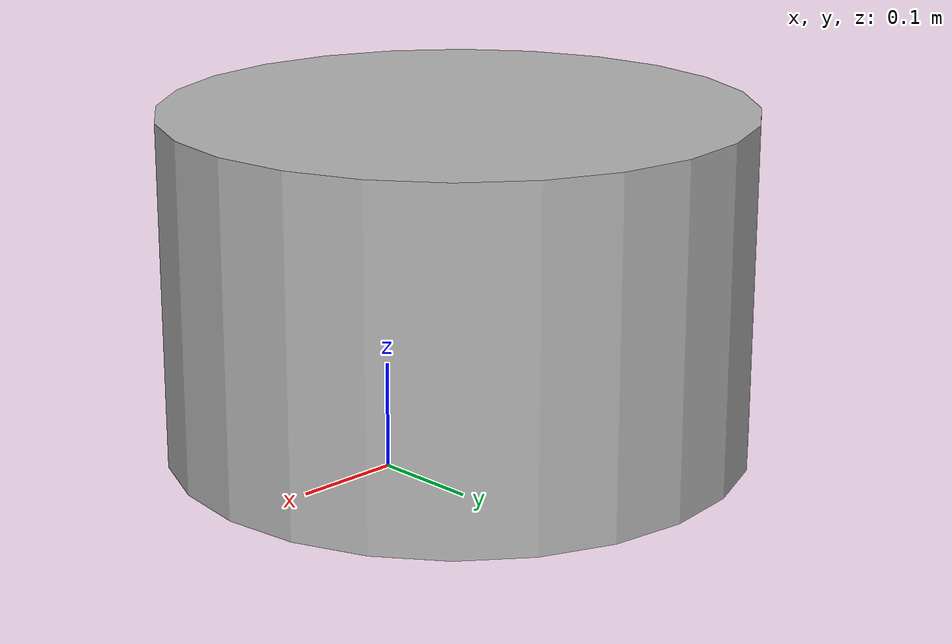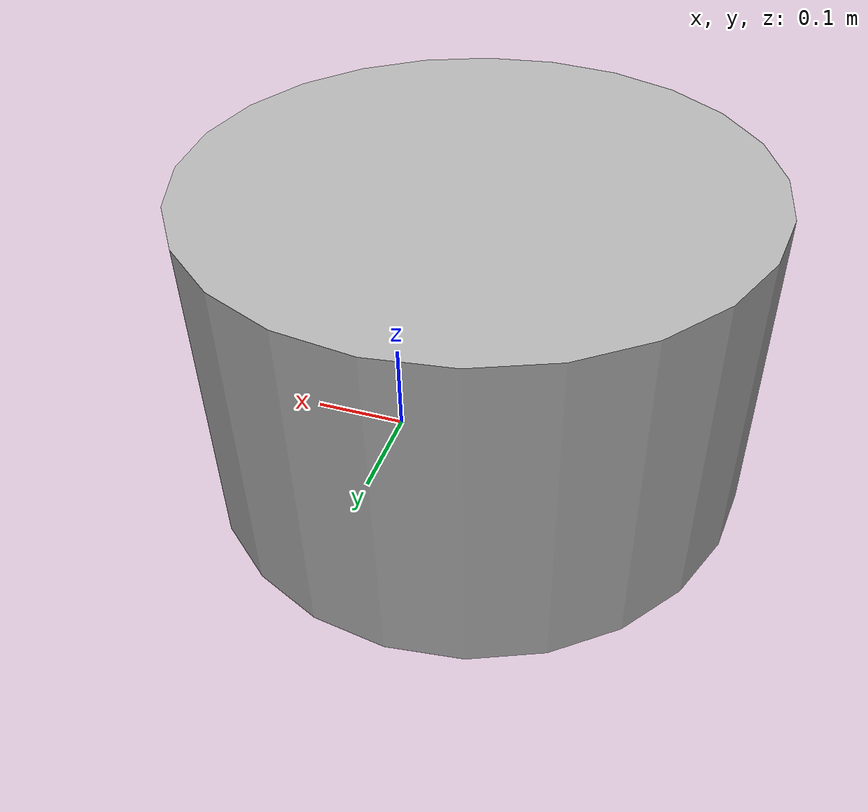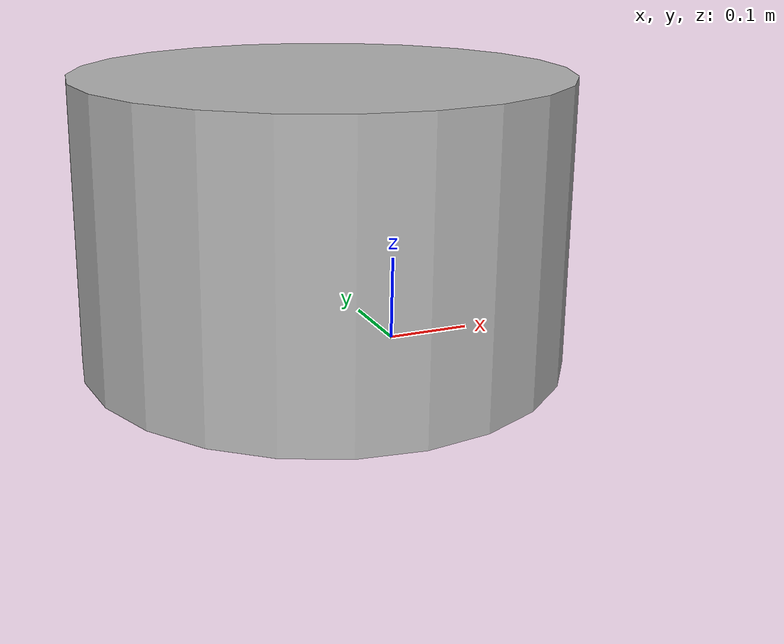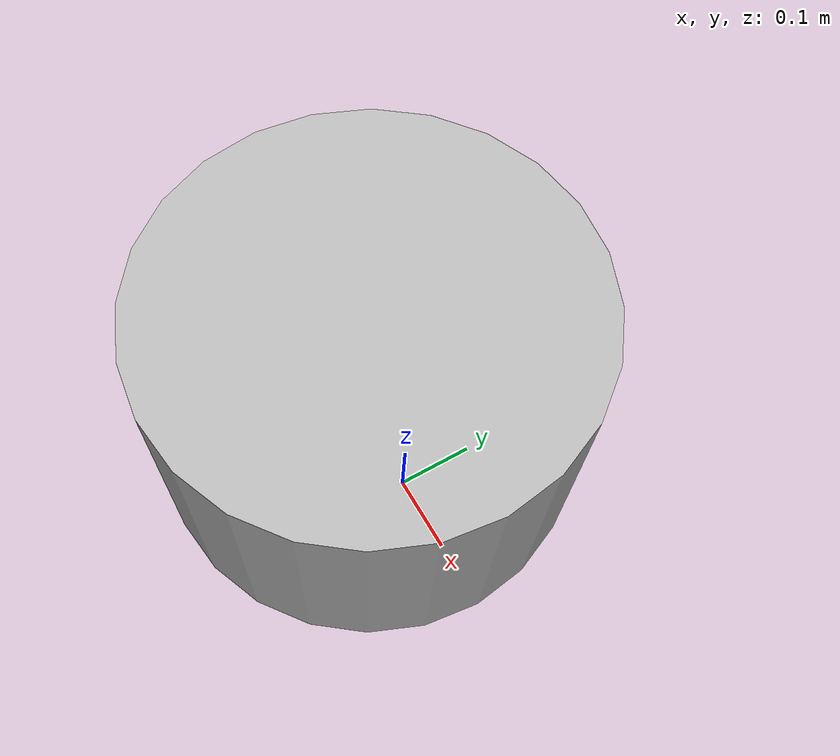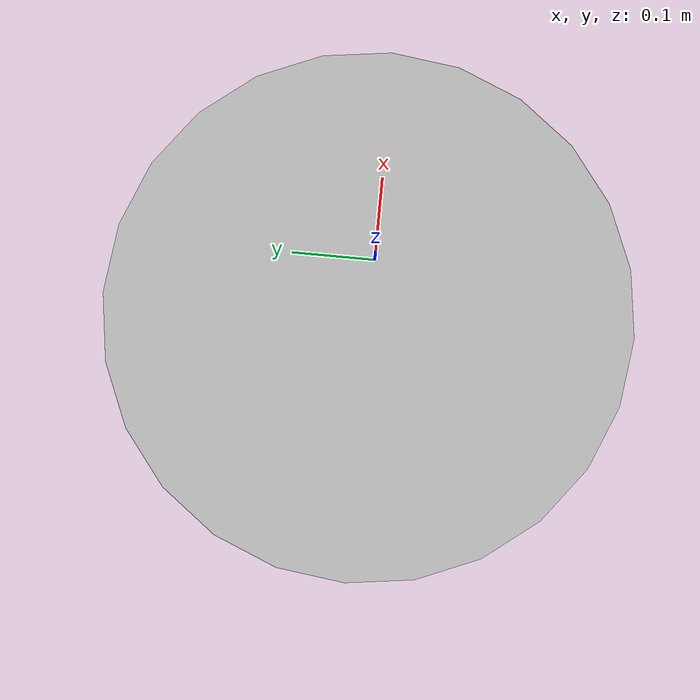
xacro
<?xml version="1.0"?>
<robot xmlns:xacro="http://www.ros.org/wiki/xacro" name="ylhb_robot">

  <!-- 1. 定义主要参考坐标系 (通常位于机器人底盘中心在地面的投影位置) -->
  <link name="base_footprint"/>

  <!-- 2. 小车主体框架：建立 base_link（实测偏心圆柱包络） -->
  <link name="base_link">
    <visual>
      <origin xyz="-0.09025 0 0.07625" rpy="0 0 0"/>
      <geometry>
        <cylinder radius="0.27675" length="0.3255"/>
      </geometry>
      <material name="gray">
        <color rgba="0.7 0.7 0.7 1"/>
      </material>
    </visual>
    <collision>
      <origin xyz="-0.09025 0 0.07625" rpy="0 0 0"/>
      <geometry>
        <cylinder radius="0.27675" length="0.3255"/>
      </geometry>
    </collision>
  </link>

  <!-- 将 base_link 与 base_footprint 链接，保持底盘坐标系在轮间中心。 -->
  <joint name="footprint_to_base_joint" type="fixed">
    <parent link="base_footprint"/>
    <child link="base_link"/>
    <origin xyz="0 0 0.0865" rpy="0 0 0"/>
  </joint>

  <!-- 3. 定义 IMU 的位置与物理属性 -->
  <link name="imu_link">
    <!-- 仅做在RVIZ中可视化时的示意（简单方块） -->
    <visual>
      <geometry>
        <box size="0.02 0.02 0.02"/>
      </geometry>
      <material name="blue">
        <color rgba="0 0 1 1"/>
      </material>
    </visual>
  </link>

  <!-- 4. 定义 激光雷达 的位置与物理属性 -->
  <link name="laser_link">
    <!-- RVIZ可视化的简单圆柱体示意 -->
    <visual>
      <geometry>
        <cylinder radius="0.035" length="0.03"/>
      </geometry>
      <material name="black">
        <color rgba="0.1 0.1 0.1 1"/>
      </material>
    </visual>
  </link>

  <link name="gps_link"/>

  <!-- ================= 连接关节 (Joints) ================= -->

  <!-- Base 到 IMU 的静态固定连接 -->
  <joint name="base_to_imu_joint" type="fixed">
    <parent link="base_footprint"/>
    <child link="imu_link"/>
    <!-- N300WP PRO: 轮间中心前方 109.5 mm、高 110 mm，X 轴朝车头。 -->
    <origin xyz="0.1095 0 0.110" rpy="0 0 0"/>
  </joint>

  <joint name="base_to_laser_joint" type="fixed">
    <parent link="base_link"/>
    <child link="laser_link"/>
    <!-- 雷达数据 X 轴对准小车前进方向，坐标系与 base_link 同向。 -->
    <origin xyz="-0.090 0 0.1805" rpy="0 0 0"/>
  </joint>

  <joint name="base_to_gps_joint" type="fixed">
    <parent link="base_footprint"/>
    <child link="gps_link"/>
    <!-- Provisional antenna origin. Replace XYZ with the measured antenna offset. -->
    <origin xyz="0 0 0" rpy="0 0 0"/>
  </joint>

</robot>
